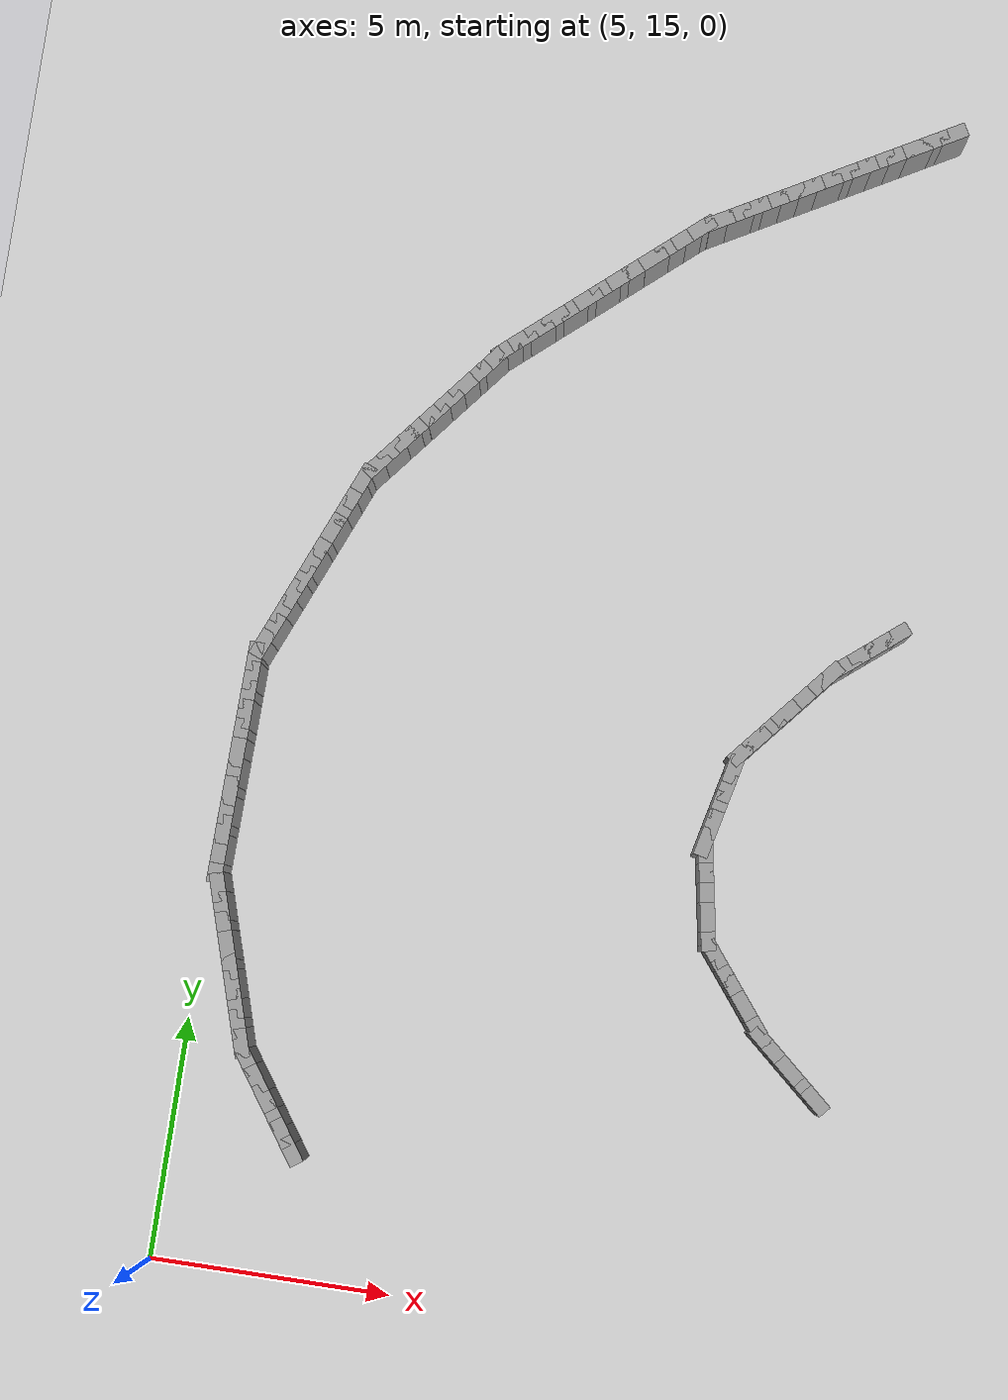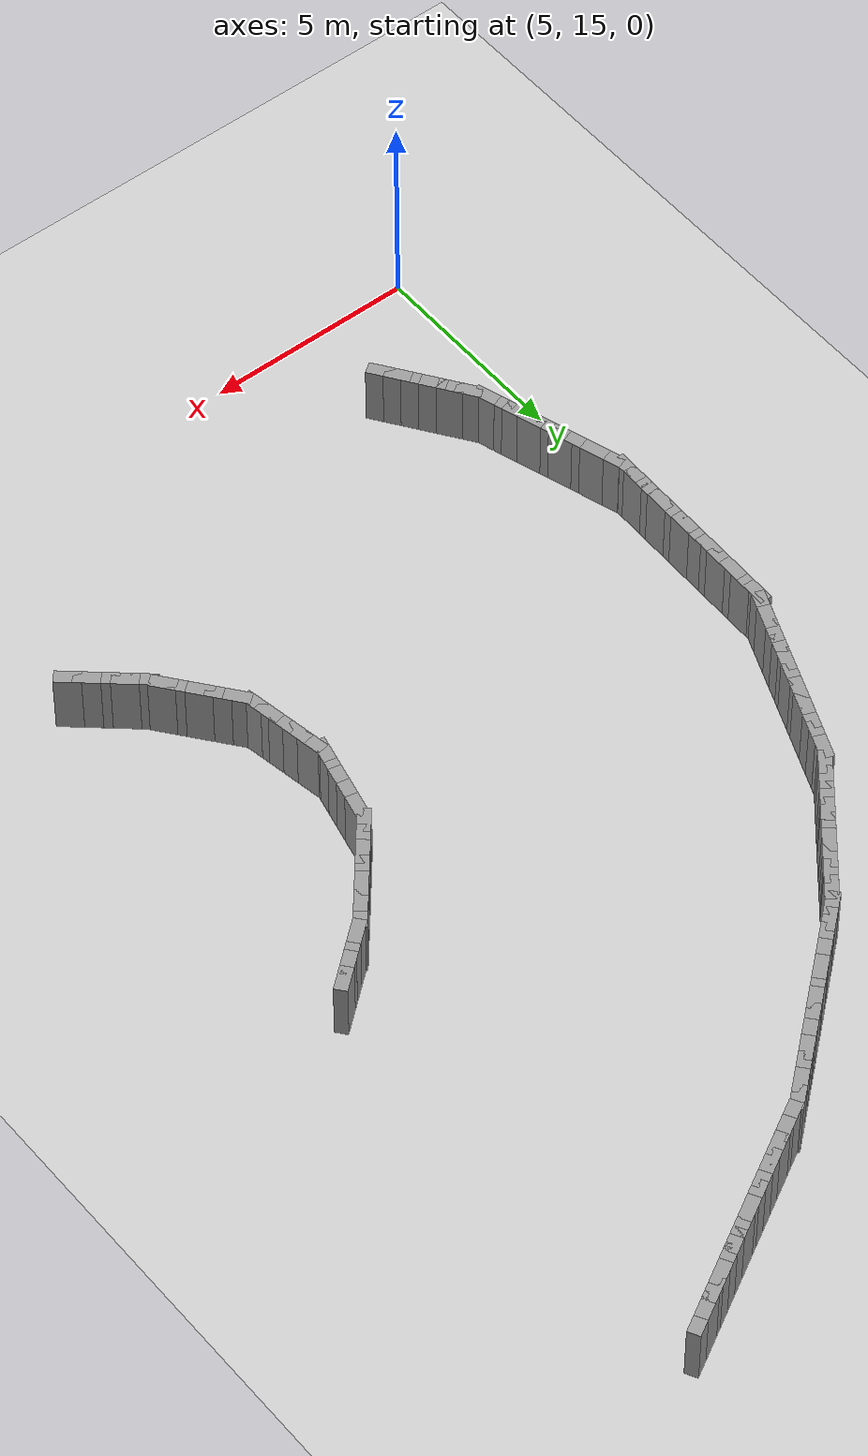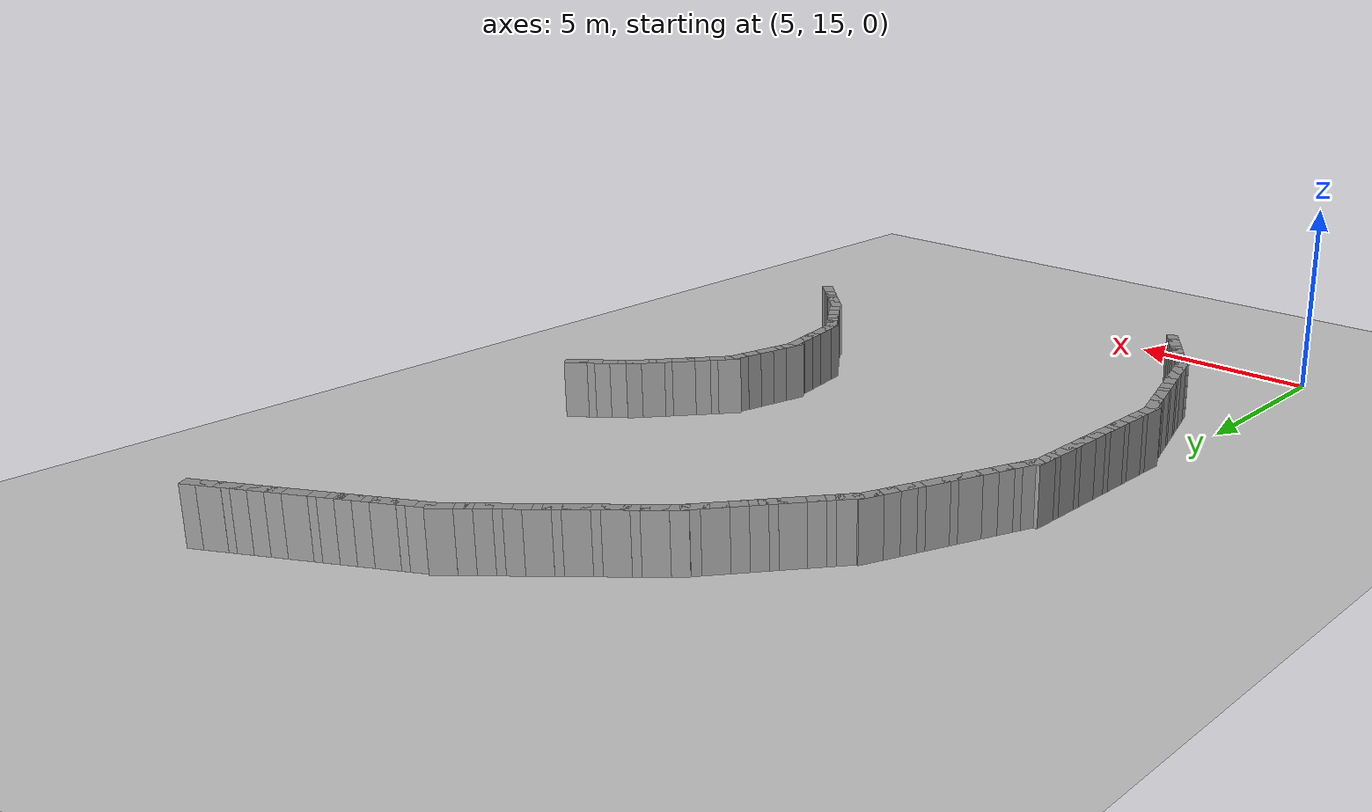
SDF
<sdf version="1.5">
 <world name="img_ellipse_obs">
  <include><uri>model://sun</uri></include>
  <include><uri>model://ground_plane</uri></include>
  <model name="wallL_0">
   <static>true</static>
   <pose>5.326 27.536 0.750 0 0 -1.592</pose>
   <link name="link">
    <collision name="col"><geometry><box><size>0.600 0.300 1.500</size></box></geometry></collision>
    <visual name="vis">
     <geometry><box><size>0.600 0.300 1.500</size></box></geometry>
     <material><ambient>0.6 0.6 0.6 1</ambient><diffuse>0.6 0.6 0.6 1</diffuse></material>
    </visual>
   </link>
  </model>
  <model name="wallL_1">
   <static>true</static>
   <pose>5.318 27.137 0.750 0 0 -1.592</pose>
   <link name="link">
    <collision name="col"><geometry><box><size>0.600 0.300 1.500</size></box></geometry></collision>
    <visual name="vis">
     <geometry><box><size>0.600 0.300 1.500</size></box></geometry>
     <material><ambient>0.6 0.6 0.6 1</ambient><diffuse>0.6 0.6 0.6 1</diffuse></material>
    </visual>
   </link>
  </model>
  <model name="wallL_2">
   <static>true</static>
   <pose>5.309 26.737 0.750 0 0 -1.592</pose>
   <link name="link">
    <collision name="col"><geometry><box><size>0.600 0.300 1.500</size></box></geometry></collision>
    <visual name="vis">
     <geometry><box><size>0.600 0.300 1.500</size></box></geometry>
     <material><ambient>0.6 0.6 0.6 1</ambient><diffuse>0.6 0.6 0.6 1</diffuse></material>
    </visual>
   </link>
  </model>
  <model name="wallL_3">
   <static>true</static>
   <pose>5.301 26.337 0.750 0 0 -1.592</pose>
   <link name="link">
    <collision name="col"><geometry><box><size>0.600 0.300 1.500</size></box></geometry></collision>
    <visual name="vis">
     <geometry><box><size>0.600 0.300 1.500</size></box></geometry>
     <material><ambient>0.6 0.6 0.6 1</ambient><diffuse>0.6 0.6 0.6 1</diffuse></material>
    </visual>
   </link>
  </model>
  <model name="wallL_4">
   <static>true</static>
   <pose>5.292 25.937 0.750 0 0 -1.592</pose>
   <link name="link">
    <collision name="col"><geometry><box><size>0.600 0.300 1.500</size></box></geometry></collision>
    <visual name="vis">
     <geometry><box><size>0.600 0.300 1.500</size></box></geometry>
     <material><ambient>0.6 0.6 0.6 1</ambient><diffuse>0.6 0.6 0.6 1</diffuse></material>
    </visual>
   </link>
  </model>
  <model name="wallL_5">
   <static>true</static>
   <pose>5.284 25.537 0.750 0 0 -1.592</pose>
   <link name="link">
    <collision name="col"><geometry><box><size>0.600 0.300 1.500</size></box></geometry></collision>
    <visual name="vis">
     <geometry><box><size>0.600 0.300 1.500</size></box></geometry>
     <material><ambient>0.6 0.6 0.6 1</ambient><diffuse>0.6 0.6 0.6 1</diffuse></material>
    </visual>
   </link>
  </model>
  <model name="wallL_6">
   <static>true</static>
   <pose>5.276 25.137 0.750 0 0 -1.592</pose>
   <link name="link">
    <collision name="col"><geometry><box><size>0.600 0.300 1.500</size></box></geometry></collision>
    <visual name="vis">
     <geometry><box><size>0.600 0.300 1.500</size></box></geometry>
     <material><ambient>0.6 0.6 0.6 1</ambient><diffuse>0.6 0.6 0.6 1</diffuse></material>
    </visual>
   </link>
  </model>
  <model name="wallL_7">
   <static>true</static>
   <pose>5.267 24.737 0.750 0 0 -1.592</pose>
   <link name="link">
    <collision name="col"><geometry><box><size>0.600 0.300 1.500</size></box></geometry></collision>
    <visual name="vis">
     <geometry><box><size>0.600 0.300 1.500</size></box></geometry>
     <material><ambient>0.6 0.6 0.6 1</ambient><diffuse>0.6 0.6 0.6 1</diffuse></material>
    </visual>
   </link>
  </model>
  <model name="wallL_8">
   <static>true</static>
   <pose>5.259 24.337 0.750 0 0 -1.592</pose>
   <link name="link">
    <collision name="col"><geometry><box><size>0.600 0.300 1.500</size></box></geometry></collision>
    <visual name="vis">
     <geometry><box><size>0.600 0.300 1.500</size></box></geometry>
     <material><ambient>0.6 0.6 0.6 1</ambient><diffuse>0.6 0.6 0.6 1</diffuse></material>
    </visual>
   </link>
  </model>
  <model name="wallL_9">
   <static>true</static>
   <pose>5.250 23.937 0.750 0 0 -1.592</pose>
   <link name="link">
    <collision name="col"><geometry><box><size>0.600 0.300 1.500</size></box></geometry></collision>
    <visual name="vis">
     <geometry><box><size>0.600 0.300 1.500</size></box></geometry>
     <material><ambient>0.6 0.6 0.6 1</ambient><diffuse>0.6 0.6 0.6 1</diffuse></material>
    </visual>
   </link>
  </model>
  <model name="wallL_10">
   <static>true</static>
   <pose>5.242 23.537 0.750 0 0 -1.592</pose>
   <link name="link">
    <collision name="col"><geometry><box><size>0.600 0.300 1.500</size></box></geometry></collision>
    <visual name="vis">
     <geometry><box><size>0.600 0.300 1.500</size></box></geometry>
     <material><ambient>0.6 0.6 0.6 1</ambient><diffuse>0.6 0.6 0.6 1</diffuse></material>
    </visual>
   </link>
  </model>
  <model name="wallL_11">
   <static>true</static>
   <pose>5.233 23.137 0.750 0 0 -1.592</pose>
   <link name="link">
    <collision name="col"><geometry><box><size>0.600 0.300 1.500</size></box></geometry></collision>
    <visual name="vis">
     <geometry><box><size>0.600 0.300 1.500</size></box></geometry>
     <material><ambient>0.6 0.6 0.6 1</ambient><diffuse>0.6 0.6 0.6 1</diffuse></material>
    </visual>
   </link>
  </model>
  <model name="wallL_12">
   <static>true</static>
   <pose>5.338 22.754 0.750 0 0 -1.268</pose>
   <link name="link">
    <collision name="col"><geometry><box><size>0.600 0.300 1.500</size></box></geometry></collision>
    <visual name="vis">
     <geometry><box><size>0.600 0.300 1.500</size></box></geometry>
     <material><ambient>0.6 0.6 0.6 1</ambient><diffuse>0.6 0.6 0.6 1</diffuse></material>
    </visual>
   </link>
  </model>
  <model name="wallL_13">
   <static>true</static>
   <pose>5.458 22.372 0.750 0 0 -1.268</pose>
   <link name="link">
    <collision name="col"><geometry><box><size>0.600 0.300 1.500</size></box></geometry></collision>
    <visual name="vis">
     <geometry><box><size>0.600 0.300 1.500</size></box></geometry>
     <material><ambient>0.6 0.6 0.6 1</ambient><diffuse>0.6 0.6 0.6 1</diffuse></material>
    </visual>
   </link>
  </model>
  <model name="wallL_14">
   <static>true</static>
   <pose>5.577 21.990 0.750 0 0 -1.268</pose>
   <link name="link">
    <collision name="col"><geometry><box><size>0.600 0.300 1.500</size></box></geometry></collision>
    <visual name="vis">
     <geometry><box><size>0.600 0.300 1.500</size></box></geometry>
     <material><ambient>0.6 0.6 0.6 1</ambient><diffuse>0.6 0.6 0.6 1</diffuse></material>
    </visual>
   </link>
  </model>
  <model name="wallL_15">
   <static>true</static>
   <pose>5.697 21.608 0.750 0 0 -1.268</pose>
   <link name="link">
    <collision name="col"><geometry><box><size>0.600 0.300 1.500</size></box></geometry></collision>
    <visual name="vis">
     <geometry><box><size>0.600 0.300 1.500</size></box></geometry>
     <material><ambient>0.6 0.6 0.6 1</ambient><diffuse>0.6 0.6 0.6 1</diffuse></material>
    </visual>
   </link>
  </model>
  <model name="wallL_16">
   <static>true</static>
   <pose>5.816 21.227 0.750 0 0 -1.268</pose>
   <link name="link">
    <collision name="col"><geometry><box><size>0.600 0.300 1.500</size></box></geometry></collision>
    <visual name="vis">
     <geometry><box><size>0.600 0.300 1.500</size></box></geometry>
     <material><ambient>0.6 0.6 0.6 1</ambient><diffuse>0.6 0.6 0.6 1</diffuse></material>
    </visual>
   </link>
  </model>
  <model name="wallL_17">
   <static>true</static>
   <pose>5.936 20.845 0.750 0 0 -1.268</pose>
   <link name="link">
    <collision name="col"><geometry><box><size>0.600 0.300 1.500</size></box></geometry></collision>
    <visual name="vis">
     <geometry><box><size>0.600 0.300 1.500</size></box></geometry>
     <material><ambient>0.6 0.6 0.6 1</ambient><diffuse>0.6 0.6 0.6 1</diffuse></material>
    </visual>
   </link>
  </model>
  <model name="wallL_18">
   <static>true</static>
   <pose>6.055 20.463 0.750 0 0 -1.268</pose>
   <link name="link">
    <collision name="col"><geometry><box><size>0.600 0.300 1.500</size></box></geometry></collision>
    <visual name="vis">
     <geometry><box><size>0.600 0.300 1.500</size></box></geometry>
     <material><ambient>0.6 0.6 0.6 1</ambient><diffuse>0.6 0.6 0.6 1</diffuse></material>
    </visual>
   </link>
  </model>
  <model name="wallL_19">
   <static>true</static>
   <pose>6.174 20.081 0.750 0 0 -1.268</pose>
   <link name="link">
    <collision name="col"><geometry><box><size>0.600 0.300 1.500</size></box></geometry></collision>
    <visual name="vis">
     <geometry><box><size>0.600 0.300 1.500</size></box></geometry>
     <material><ambient>0.6 0.6 0.6 1</ambient><diffuse>0.6 0.6 0.6 1</diffuse></material>
    </visual>
   </link>
  </model>
  <model name="wallL_20">
   <static>true</static>
   <pose>6.294 19.700 0.750 0 0 -1.268</pose>
   <link name="link">
    <collision name="col"><geometry><box><size>0.600 0.300 1.500</size></box></geometry></collision>
    <visual name="vis">
     <geometry><box><size>0.600 0.300 1.500</size></box></geometry>
     <material><ambient>0.6 0.6 0.6 1</ambient><diffuse>0.6 0.6 0.6 1</diffuse></material>
    </visual>
   </link>
  </model>
  <model name="wallL_21">
   <static>true</static>
   <pose>6.488 19.354 0.750 0 0 -0.961</pose>
   <link name="link">
    <collision name="col"><geometry><box><size>0.600 0.300 1.500</size></box></geometry></collision>
    <visual name="vis">
     <geometry><box><size>0.600 0.300 1.500</size></box></geometry>
     <material><ambient>0.6 0.6 0.6 1</ambient><diffuse>0.6 0.6 0.6 1</diffuse></material>
    </visual>
   </link>
  </model>
  <model name="wallL_22">
   <static>true</static>
   <pose>6.717 19.027 0.750 0 0 -0.961</pose>
   <link name="link">
    <collision name="col"><geometry><box><size>0.600 0.300 1.500</size></box></geometry></collision>
    <visual name="vis">
     <geometry><box><size>0.600 0.300 1.500</size></box></geometry>
     <material><ambient>0.6 0.6 0.6 1</ambient><diffuse>0.6 0.6 0.6 1</diffuse></material>
    </visual>
   </link>
  </model>
  <model name="wallL_23">
   <static>true</static>
   <pose>6.946 18.699 0.750 0 0 -0.961</pose>
   <link name="link">
    <collision name="col"><geometry><box><size>0.600 0.300 1.500</size></box></geometry></collision>
    <visual name="vis">
     <geometry><box><size>0.600 0.300 1.500</size></box></geometry>
     <material><ambient>0.6 0.6 0.6 1</ambient><diffuse>0.6 0.6 0.6 1</diffuse></material>
    </visual>
   </link>
  </model>
  <model name="wallL_24">
   <static>true</static>
   <pose>7.175 18.371 0.750 0 0 -0.961</pose>
   <link name="link">
    <collision name="col"><geometry><box><size>0.600 0.300 1.500</size></box></geometry></collision>
    <visual name="vis">
     <geometry><box><size>0.600 0.300 1.500</size></box></geometry>
     <material><ambient>0.6 0.6 0.6 1</ambient><diffuse>0.6 0.6 0.6 1</diffuse></material>
    </visual>
   </link>
  </model>
  <model name="wallL_25">
   <static>true</static>
   <pose>7.404 18.043 0.750 0 0 -0.961</pose>
   <link name="link">
    <collision name="col"><geometry><box><size>0.600 0.300 1.500</size></box></geometry></collision>
    <visual name="vis">
     <geometry><box><size>0.600 0.300 1.500</size></box></geometry>
     <material><ambient>0.6 0.6 0.6 1</ambient><diffuse>0.6 0.6 0.6 1</diffuse></material>
    </visual>
   </link>
  </model>
  <model name="wallL_26">
   <static>true</static>
   <pose>7.633 17.715 0.750 0 0 -0.961</pose>
   <link name="link">
    <collision name="col"><geometry><box><size>0.600 0.300 1.500</size></box></geometry></collision>
    <visual name="vis">
     <geometry><box><size>0.600 0.300 1.500</size></box></geometry>
     <material><ambient>0.6 0.6 0.6 1</ambient><diffuse>0.6 0.6 0.6 1</diffuse></material>
    </visual>
   </link>
  </model>
  <model name="wallL_392">
   <static>true</static>
   <pose>17.973 40.515 0.750 0 0 -2.632</pose>
   <link name="link">
    <collision name="col"><geometry><box><size>0.600 0.300 1.500</size></box></geometry></collision>
    <visual name="vis">
     <geometry><box><size>0.600 0.300 1.500</size></box></geometry>
     <material><ambient>0.6 0.6 0.6 1</ambient><diffuse>0.6 0.6 0.6 1</diffuse></material>
    </visual>
   </link>
  </model>
  <model name="wallL_393">
   <static>true</static>
   <pose>17.624 40.320 0.750 0 0 -2.632</pose>
   <link name="link">
    <collision name="col"><geometry><box><size>0.600 0.300 1.500</size></box></geometry></collision>
    <visual name="vis">
     <geometry><box><size>0.600 0.300 1.500</size></box></geometry>
     <material><ambient>0.6 0.6 0.6 1</ambient><diffuse>0.6 0.6 0.6 1</diffuse></material>
    </visual>
   </link>
  </model>
  <model name="wallL_394">
   <static>true</static>
   <pose>17.275 40.124 0.750 0 0 -2.632</pose>
   <link name="link">
    <collision name="col"><geometry><box><size>0.600 0.300 1.500</size></box></geometry></collision>
    <visual name="vis">
     <geometry><box><size>0.600 0.300 1.500</size></box></geometry>
     <material><ambient>0.6 0.6 0.6 1</ambient><diffuse>0.6 0.6 0.6 1</diffuse></material>
    </visual>
   </link>
  </model>
  <model name="wallL_395">
   <static>true</static>
   <pose>16.926 39.929 0.750 0 0 -2.632</pose>
   <link name="link">
    <collision name="col"><geometry><box><size>0.600 0.300 1.500</size></box></geometry></collision>
    <visual name="vis">
     <geometry><box><size>0.600 0.300 1.500</size></box></geometry>
     <material><ambient>0.6 0.6 0.6 1</ambient><diffuse>0.6 0.6 0.6 1</diffuse></material>
    </visual>
   </link>
  </model>
  <model name="wallL_396">
   <static>true</static>
   <pose>16.577 39.734 0.750 0 0 -2.632</pose>
   <link name="link">
    <collision name="col"><geometry><box><size>0.600 0.300 1.500</size></box></geometry></collision>
    <visual name="vis">
     <geometry><box><size>0.600 0.300 1.500</size></box></geometry>
     <material><ambient>0.6 0.6 0.6 1</ambient><diffuse>0.6 0.6 0.6 1</diffuse></material>
    </visual>
   </link>
  </model>
  <model name="wallL_397">
   <static>true</static>
   <pose>16.228 39.539 0.750 0 0 -2.632</pose>
   <link name="link">
    <collision name="col"><geometry><box><size>0.600 0.300 1.500</size></box></geometry></collision>
    <visual name="vis">
     <geometry><box><size>0.600 0.300 1.500</size></box></geometry>
     <material><ambient>0.6 0.6 0.6 1</ambient><diffuse>0.6 0.6 0.6 1</diffuse></material>
    </visual>
   </link>
  </model>
  <model name="wallL_398">
   <static>true</static>
   <pose>15.879 39.344 0.750 0 0 -2.632</pose>
   <link name="link">
    <collision name="col"><geometry><box><size>0.600 0.300 1.500</size></box></geometry></collision>
    <visual name="vis">
     <geometry><box><size>0.600 0.300 1.500</size></box></geometry>
     <material><ambient>0.6 0.6 0.6 1</ambient><diffuse>0.6 0.6 0.6 1</diffuse></material>
    </visual>
   </link>
  </model>
  <model name="wallL_399">
   <static>true</static>
   <pose>15.529 39.148 0.750 0 0 -2.632</pose>
   <link name="link">
    <collision name="col"><geometry><box><size>0.600 0.300 1.500</size></box></geometry></collision>
    <visual name="vis">
     <geometry><box><size>0.600 0.300 1.500</size></box></geometry>
     <material><ambient>0.6 0.6 0.6 1</ambient><diffuse>0.6 0.6 0.6 1</diffuse></material>
    </visual>
   </link>
  </model>
  <model name="wallL_400">
   <static>true</static>
   <pose>15.180 38.953 0.750 0 0 -2.632</pose>
   <link name="link">
    <collision name="col"><geometry><box><size>0.600 0.300 1.500</size></box></geometry></collision>
    <visual name="vis">
     <geometry><box><size>0.600 0.300 1.500</size></box></geometry>
     <material><ambient>0.6 0.6 0.6 1</ambient><diffuse>0.6 0.6 0.6 1</diffuse></material>
    </visual>
   </link>
  </model>
  <model name="wallL_401">
   <static>true</static>
   <pose>14.831 38.758 0.750 0 0 -2.632</pose>
   <link name="link">
    <collision name="col"><geometry><box><size>0.600 0.300 1.500</size></box></geometry></collision>
    <visual name="vis">
     <geometry><box><size>0.600 0.300 1.500</size></box></geometry>
     <material><ambient>0.6 0.6 0.6 1</ambient><diffuse>0.6 0.6 0.6 1</diffuse></material>
    </visual>
   </link>
  </model>
  <model name="wallL_402">
   <static>true</static>
   <pose>14.482 38.563 0.750 0 0 -2.632</pose>
   <link name="link">
    <collision name="col"><geometry><box><size>0.600 0.300 1.500</size></box></geometry></collision>
    <visual name="vis">
     <geometry><box><size>0.600 0.300 1.500</size></box></geometry>
     <material><ambient>0.6 0.6 0.6 1</ambient><diffuse>0.6 0.6 0.6 1</diffuse></material>
    </visual>
   </link>
  </model>
  <model name="wallL_403">
   <static>true</static>
   <pose>14.133 38.368 0.750 0 0 -2.632</pose>
   <link name="link">
    <collision name="col"><geometry><box><size>0.600 0.300 1.500</size></box></geometry></collision>
    <visual name="vis">
     <geometry><box><size>0.600 0.300 1.500</size></box></geometry>
     <material><ambient>0.6 0.6 0.6 1</ambient><diffuse>0.6 0.6 0.6 1</diffuse></material>
    </visual>
   </link>
  </model>
  <model name="wallL_404">
   <static>true</static>
   <pose>13.784 38.172 0.750 0 0 -2.632</pose>
   <link name="link">
    <collision name="col"><geometry><box><size>0.600 0.300 1.500</size></box></geometry></collision>
    <visual name="vis">
     <geometry><box><size>0.600 0.300 1.500</size></box></geometry>
     <material><ambient>0.6 0.6 0.6 1</ambient><diffuse>0.6 0.6 0.6 1</diffuse></material>
    </visual>
   </link>
  </model>
  <model name="wallL_405">
   <static>true</static>
   <pose>13.435 37.977 0.750 0 0 -2.632</pose>
   <link name="link">
    <collision name="col"><geometry><box><size>0.600 0.300 1.500</size></box></geometry></collision>
    <visual name="vis">
     <geometry><box><size>0.600 0.300 1.500</size></box></geometry>
     <material><ambient>0.6 0.6 0.6 1</ambient><diffuse>0.6 0.6 0.6 1</diffuse></material>
    </visual>
   </link>
  </model>
  <model name="wallL_406">
   <static>true</static>
   <pose>13.092 37.773 0.750 0 0 -2.429</pose>
   <link name="link">
    <collision name="col"><geometry><box><size>0.600 0.300 1.500</size></box></geometry></collision>
    <visual name="vis">
     <geometry><box><size>0.600 0.300 1.500</size></box></geometry>
     <material><ambient>0.6 0.6 0.6 1</ambient><diffuse>0.6 0.6 0.6 1</diffuse></material>
    </visual>
   </link>
  </model>
  <model name="wallL_407">
   <static>true</static>
   <pose>12.789 37.511 0.750 0 0 -2.429</pose>
   <link name="link">
    <collision name="col"><geometry><box><size>0.600 0.300 1.500</size></box></geometry></collision>
    <visual name="vis">
     <geometry><box><size>0.600 0.300 1.500</size></box></geometry>
     <material><ambient>0.6 0.6 0.6 1</ambient><diffuse>0.6 0.6 0.6 1</diffuse></material>
    </visual>
   </link>
  </model>
  <model name="wallL_408">
   <static>true</static>
   <pose>12.487 37.250 0.750 0 0 -2.429</pose>
   <link name="link">
    <collision name="col"><geometry><box><size>0.600 0.300 1.500</size></box></geometry></collision>
    <visual name="vis">
     <geometry><box><size>0.600 0.300 1.500</size></box></geometry>
     <material><ambient>0.6 0.6 0.6 1</ambient><diffuse>0.6 0.6 0.6 1</diffuse></material>
    </visual>
   </link>
  </model>
  <model name="wallL_409">
   <static>true</static>
   <pose>12.184 36.988 0.750 0 0 -2.429</pose>
   <link name="link">
    <collision name="col"><geometry><box><size>0.600 0.300 1.500</size></box></geometry></collision>
    <visual name="vis">
     <geometry><box><size>0.600 0.300 1.500</size></box></geometry>
     <material><ambient>0.6 0.6 0.6 1</ambient><diffuse>0.6 0.6 0.6 1</diffuse></material>
    </visual>
   </link>
  </model>
  <model name="wallL_410">
   <static>true</static>
   <pose>11.881 36.727 0.750 0 0 -2.429</pose>
   <link name="link">
    <collision name="col"><geometry><box><size>0.600 0.300 1.500</size></box></geometry></collision>
    <visual name="vis">
     <geometry><box><size>0.600 0.300 1.500</size></box></geometry>
     <material><ambient>0.6 0.6 0.6 1</ambient><diffuse>0.6 0.6 0.6 1</diffuse></material>
    </visual>
   </link>
  </model>
  <model name="wallL_411">
   <static>true</static>
   <pose>11.578 36.466 0.750 0 0 -2.429</pose>
   <link name="link">
    <collision name="col"><geometry><box><size>0.600 0.300 1.500</size></box></geometry></collision>
    <visual name="vis">
     <geometry><box><size>0.600 0.300 1.500</size></box></geometry>
     <material><ambient>0.6 0.6 0.6 1</ambient><diffuse>0.6 0.6 0.6 1</diffuse></material>
    </visual>
   </link>
  </model>
  <model name="wallL_412">
   <static>true</static>
   <pose>11.276 36.204 0.750 0 0 -2.429</pose>
   <link name="link">
    <collision name="col"><geometry><box><size>0.600 0.300 1.500</size></box></geometry></collision>
    <visual name="vis">
     <geometry><box><size>0.600 0.300 1.500</size></box></geometry>
     <material><ambient>0.6 0.6 0.6 1</ambient><diffuse>0.6 0.6 0.6 1</diffuse></material>
    </visual>
   </link>
  </model>
  <model name="wallL_413">
   <static>true</static>
   <pose>10.973 35.943 0.750 0 0 -2.429</pose>
   <link name="link">
    <collision name="col"><geometry><box><size>0.600 0.300 1.500</size></box></geometry></collision>
    <visual name="vis">
     <geometry><box><size>0.600 0.300 1.500</size></box></geometry>
     <material><ambient>0.6 0.6 0.6 1</ambient><diffuse>0.6 0.6 0.6 1</diffuse></material>
    </visual>
   </link>
  </model>
  <model name="wallL_414">
   <static>true</static>
   <pose>10.670 35.681 0.750 0 0 -2.429</pose>
   <link name="link">
    <collision name="col"><geometry><box><size>0.600 0.300 1.500</size></box></geometry></collision>
    <visual name="vis">
     <geometry><box><size>0.600 0.300 1.500</size></box></geometry>
     <material><ambient>0.6 0.6 0.6 1</ambient><diffuse>0.6 0.6 0.6 1</diffuse></material>
    </visual>
   </link>
  </model>
  <model name="wallL_415">
   <static>true</static>
   <pose>10.367 35.420 0.750 0 0 -2.429</pose>
   <link name="link">
    <collision name="col"><geometry><box><size>0.600 0.300 1.500</size></box></geometry></collision>
    <visual name="vis">
     <geometry><box><size>0.600 0.300 1.500</size></box></geometry>
     <material><ambient>0.6 0.6 0.6 1</ambient><diffuse>0.6 0.6 0.6 1</diffuse></material>
    </visual>
   </link>
  </model>
  <model name="wallL_416">
   <static>true</static>
   <pose>10.065 35.158 0.750 0 0 -2.429</pose>
   <link name="link">
    <collision name="col"><geometry><box><size>0.600 0.300 1.500</size></box></geometry></collision>
    <visual name="vis">
     <geometry><box><size>0.600 0.300 1.500</size></box></geometry>
     <material><ambient>0.6 0.6 0.6 1</ambient><diffuse>0.6 0.6 0.6 1</diffuse></material>
    </visual>
   </link>
  </model>
  <model name="wallL_417">
   <static>true</static>
   <pose>9.762 34.897 0.750 0 0 -2.429</pose>
   <link name="link">
    <collision name="col"><geometry><box><size>0.600 0.300 1.500</size></box></geometry></collision>
    <visual name="vis">
     <geometry><box><size>0.600 0.300 1.500</size></box></geometry>
     <material><ambient>0.6 0.6 0.6 1</ambient><diffuse>0.6 0.6 0.6 1</diffuse></material>
    </visual>
   </link>
  </model>
  <model name="wallL_418">
   <static>true</static>
   <pose>9.459 34.635 0.750 0 0 -2.429</pose>
   <link name="link">
    <collision name="col"><geometry><box><size>0.600 0.300 1.500</size></box></geometry></collision>
    <visual name="vis">
     <geometry><box><size>0.600 0.300 1.500</size></box></geometry>
     <material><ambient>0.6 0.6 0.6 1</ambient><diffuse>0.6 0.6 0.6 1</diffuse></material>
    </visual>
   </link>
  </model>
  <model name="wallL_419">
   <static>true</static>
   <pose>9.201 34.331 0.750 0 0 -2.250</pose>
   <link name="link">
    <collision name="col"><geometry><box><size>0.600 0.300 1.500</size></box></geometry></collision>
    <visual name="vis">
     <geometry><box><size>0.600 0.300 1.500</size></box></geometry>
     <material><ambient>0.6 0.6 0.6 1</ambient><diffuse>0.6 0.6 0.6 1</diffuse></material>
    </visual>
   </link>
  </model>
  <model name="wallL_420">
   <static>true</static>
   <pose>8.949 34.020 0.750 0 0 -2.250</pose>
   <link name="link">
    <collision name="col"><geometry><box><size>0.600 0.300 1.500</size></box></geometry></collision>
    <visual name="vis">
     <geometry><box><size>0.600 0.300 1.500</size></box></geometry>
     <material><ambient>0.6 0.6 0.6 1</ambient><diffuse>0.6 0.6 0.6 1</diffuse></material>
    </visual>
   </link>
  </model>
  <model name="wallL_421">
   <static>true</static>
   <pose>8.698 33.709 0.750 0 0 -2.250</pose>
   <link name="link">
    <collision name="col"><geometry><box><size>0.600 0.300 1.500</size></box></geometry></collision>
    <visual name="vis">
     <geometry><box><size>0.600 0.300 1.500</size></box></geometry>
     <material><ambient>0.6 0.6 0.6 1</ambient><diffuse>0.6 0.6 0.6 1</diffuse></material>
    </visual>
   </link>
  </model>
  <model name="wallL_422">
   <static>true</static>
   <pose>8.447 33.398 0.750 0 0 -2.250</pose>
   <link name="link">
    <collision name="col"><geometry><box><size>0.600 0.300 1.500</size></box></geometry></collision>
    <visual name="vis">
     <geometry><box><size>0.600 0.300 1.500</size></box></geometry>
     <material><ambient>0.6 0.6 0.6 1</ambient><diffuse>0.6 0.6 0.6 1</diffuse></material>
    </visual>
   </link>
  </model>
  <model name="wallL_423">
   <static>true</static>
   <pose>8.196 33.086 0.750 0 0 -2.250</pose>
   <link name="link">
    <collision name="col"><geometry><box><size>0.600 0.300 1.500</size></box></geometry></collision>
    <visual name="vis">
     <geometry><box><size>0.600 0.300 1.500</size></box></geometry>
     <material><ambient>0.6 0.6 0.6 1</ambient><diffuse>0.6 0.6 0.6 1</diffuse></material>
    </visual>
   </link>
  </model>
  <model name="wallL_424">
   <static>true</static>
   <pose>7.944 32.775 0.750 0 0 -2.250</pose>
   <link name="link">
    <collision name="col"><geometry><box><size>0.600 0.300 1.500</size></box></geometry></collision>
    <visual name="vis">
     <geometry><box><size>0.600 0.300 1.500</size></box></geometry>
     <material><ambient>0.6 0.6 0.6 1</ambient><diffuse>0.6 0.6 0.6 1</diffuse></material>
    </visual>
   </link>
  </model>
  <model name="wallL_425">
   <static>true</static>
   <pose>7.693 32.464 0.750 0 0 -2.250</pose>
   <link name="link">
    <collision name="col"><geometry><box><size>0.600 0.300 1.500</size></box></geometry></collision>
    <visual name="vis">
     <geometry><box><size>0.600 0.300 1.500</size></box></geometry>
     <material><ambient>0.6 0.6 0.6 1</ambient><diffuse>0.6 0.6 0.6 1</diffuse></material>
    </visual>
   </link>
  </model>
  <model name="wallL_426">
   <static>true</static>
   <pose>7.442 32.153 0.750 0 0 -2.250</pose>
   <link name="link">
    <collision name="col"><geometry><box><size>0.600 0.300 1.500</size></box></geometry></collision>
    <visual name="vis">
     <geometry><box><size>0.600 0.300 1.500</size></box></geometry>
     <material><ambient>0.6 0.6 0.6 1</ambient><diffuse>0.6 0.6 0.6 1</diffuse></material>
    </visual>
   </link>
  </model>
  <model name="wallL_427">
   <static>true</static>
   <pose>7.190 31.842 0.750 0 0 -2.250</pose>
   <link name="link">
    <collision name="col"><geometry><box><size>0.600 0.300 1.500</size></box></geometry></collision>
    <visual name="vis">
     <geometry><box><size>0.600 0.300 1.500</size></box></geometry>
     <material><ambient>0.6 0.6 0.6 1</ambient><diffuse>0.6 0.6 0.6 1</diffuse></material>
    </visual>
   </link>
  </model>
  <model name="wallL_428">
   <static>true</static>
   <pose>6.963 31.516 0.750 0 0 -1.961</pose>
   <link name="link">
    <collision name="col"><geometry><box><size>0.600 0.300 1.500</size></box></geometry></collision>
    <visual name="vis">
     <geometry><box><size>0.600 0.300 1.500</size></box></geometry>
     <material><ambient>0.6 0.6 0.6 1</ambient><diffuse>0.6 0.6 0.6 1</diffuse></material>
    </visual>
   </link>
  </model>
  <model name="wallL_429">
   <static>true</static>
   <pose>6.811 31.146 0.750 0 0 -1.961</pose>
   <link name="link">
    <collision name="col"><geometry><box><size>0.600 0.300 1.500</size></box></geometry></collision>
    <visual name="vis">
     <geometry><box><size>0.600 0.300 1.500</size></box></geometry>
     <material><ambient>0.6 0.6 0.6 1</ambient><diffuse>0.6 0.6 0.6 1</diffuse></material>
    </visual>
   </link>
  </model>
  <model name="wallL_430">
   <static>true</static>
   <pose>6.659 30.776 0.750 0 0 -1.961</pose>
   <link name="link">
    <collision name="col"><geometry><box><size>0.600 0.300 1.500</size></box></geometry></collision>
    <visual name="vis">
     <geometry><box><size>0.600 0.300 1.500</size></box></geometry>
     <material><ambient>0.6 0.6 0.6 1</ambient><diffuse>0.6 0.6 0.6 1</diffuse></material>
    </visual>
   </link>
  </model>
  <model name="wallL_431">
   <static>true</static>
   <pose>6.507 30.406 0.750 0 0 -1.961</pose>
   <link name="link">
    <collision name="col"><geometry><box><size>0.600 0.300 1.500</size></box></geometry></collision>
    <visual name="vis">
     <geometry><box><size>0.600 0.300 1.500</size></box></geometry>
     <material><ambient>0.6 0.6 0.6 1</ambient><diffuse>0.6 0.6 0.6 1</diffuse></material>
    </visual>
   </link>
  </model>
  <model name="wallL_432">
   <static>true</static>
   <pose>6.354 30.036 0.750 0 0 -1.961</pose>
   <link name="link">
    <collision name="col"><geometry><box><size>0.600 0.300 1.500</size></box></geometry></collision>
    <visual name="vis">
     <geometry><box><size>0.600 0.300 1.500</size></box></geometry>
     <material><ambient>0.6 0.6 0.6 1</ambient><diffuse>0.6 0.6 0.6 1</diffuse></material>
    </visual>
   </link>
  </model>
  <model name="wallL_433">
   <static>true</static>
   <pose>6.202 29.666 0.750 0 0 -1.961</pose>
   <link name="link">
    <collision name="col"><geometry><box><size>0.600 0.300 1.500</size></box></geometry></collision>
    <visual name="vis">
     <geometry><box><size>0.600 0.300 1.500</size></box></geometry>
     <material><ambient>0.6 0.6 0.6 1</ambient><diffuse>0.6 0.6 0.6 1</diffuse></material>
    </visual>
   </link>
  </model>
  <model name="wallL_434">
   <static>true</static>
   <pose>6.050 29.297 0.750 0 0 -1.961</pose>
   <link name="link">
    <collision name="col"><geometry><box><size>0.600 0.300 1.500</size></box></geometry></collision>
    <visual name="vis">
     <geometry><box><size>0.600 0.300 1.500</size></box></geometry>
     <material><ambient>0.6 0.6 0.6 1</ambient><diffuse>0.6 0.6 0.6 1</diffuse></material>
    </visual>
   </link>
  </model>
  <model name="wallL_435">
   <static>true</static>
   <pose>5.898 28.927 0.750 0 0 -1.961</pose>
   <link name="link">
    <collision name="col"><geometry><box><size>0.600 0.300 1.500</size></box></geometry></collision>
    <visual name="vis">
     <geometry><box><size>0.600 0.300 1.500</size></box></geometry>
     <material><ambient>0.6 0.6 0.6 1</ambient><diffuse>0.6 0.6 0.6 1</diffuse></material>
    </visual>
   </link>
  </model>
  <model name="wallL_436">
   <static>true</static>
   <pose>5.746 28.557 0.750 0 0 -1.961</pose>
   <link name="link">
    <collision name="col"><geometry><box><size>0.600 0.300 1.500</size></box></geometry></collision>
    <visual name="vis">
     <geometry><box><size>0.600 0.300 1.500</size></box></geometry>
     <material><ambient>0.6 0.6 0.6 1</ambient><diffuse>0.6 0.6 0.6 1</diffuse></material>
    </visual>
   </link>
  </model>
  <model name="wallL_437">
   <static>true</static>
   <pose>5.594 28.187 0.750 0 0 -1.961</pose>
   <link name="link">
    <collision name="col"><geometry><box><size>0.600 0.300 1.500</size></box></geometry></collision>
    <visual name="vis">
     <geometry><box><size>0.600 0.300 1.500</size></box></geometry>
     <material><ambient>0.6 0.6 0.6 1</ambient><diffuse>0.6 0.6 0.6 1</diffuse></material>
    </visual>
   </link>
  </model>
  <model name="wallL_438">
   <static>true</static>
   <pose>5.441 27.817 0.750 0 0 -1.961</pose>
   <link name="link">
    <collision name="col"><geometry><box><size>0.600 0.300 1.500</size></box></geometry></collision>
    <visual name="vis">
     <geometry><box><size>0.600 0.300 1.500</size></box></geometry>
     <material><ambient>0.6 0.6 0.6 1</ambient><diffuse>0.6 0.6 0.6 1</diffuse></material>
    </visual>
   </link>
  </model>
  <model name="wallR_0">
   <static>true</static>
   <pose>15.018 25.147 0.750 0 0 1.349</pose>
   <link name="link">
    <collision name="col"><geometry><box><size>0.600 0.300 1.500</size></box></geometry></collision>
    <visual name="vis">
     <geometry><box><size>0.600 0.300 1.500</size></box></geometry>
     <material><ambient>0.6 0.6 0.6 1</ambient><diffuse>0.6 0.6 0.6 1</diffuse></material>
    </visual>
   </link>
  </model>
  <model name="wallR_1">
   <static>true</static>
   <pose>15.106 25.537 0.750 0 0 1.349</pose>
   <link name="link">
    <collision name="col"><geometry><box><size>0.600 0.300 1.500</size></box></geometry></collision>
    <visual name="vis">
     <geometry><box><size>0.600 0.300 1.500</size></box></geometry>
     <material><ambient>0.6 0.6 0.6 1</ambient><diffuse>0.6 0.6 0.6 1</diffuse></material>
    </visual>
   </link>
  </model>
  <model name="wallR_2">
   <static>true</static>
   <pose>15.194 25.927 0.750 0 0 1.349</pose>
   <link name="link">
    <collision name="col"><geometry><box><size>0.600 0.300 1.500</size></box></geometry></collision>
    <visual name="vis">
     <geometry><box><size>0.600 0.300 1.500</size></box></geometry>
     <material><ambient>0.6 0.6 0.6 1</ambient><diffuse>0.6 0.6 0.6 1</diffuse></material>
    </visual>
   </link>
  </model>
  <model name="wallR_3">
   <static>true</static>
   <pose>15.282 26.317 0.750 0 0 1.349</pose>
   <link name="link">
    <collision name="col"><geometry><box><size>0.600 0.300 1.500</size></box></geometry></collision>
    <visual name="vis">
     <geometry><box><size>0.600 0.300 1.500</size></box></geometry>
     <material><ambient>0.6 0.6 0.6 1</ambient><diffuse>0.6 0.6 0.6 1</diffuse></material>
    </visual>
   </link>
  </model>
  <model name="wallR_4">
   <static>true</static>
   <pose>15.371 26.707 0.750 0 0 1.349</pose>
   <link name="link">
    <collision name="col"><geometry><box><size>0.600 0.300 1.500</size></box></geometry></collision>
    <visual name="vis">
     <geometry><box><size>0.600 0.300 1.500</size></box></geometry>
     <material><ambient>0.6 0.6 0.6 1</ambient><diffuse>0.6 0.6 0.6 1</diffuse></material>
    </visual>
   </link>
  </model>
  <model name="wallR_5">
   <static>true</static>
   <pose>15.499 27.077 0.750 0 0 0.872</pose>
   <link name="link">
    <collision name="col"><geometry><box><size>0.600 0.300 1.500</size></box></geometry></collision>
    <visual name="vis">
     <geometry><box><size>0.600 0.300 1.500</size></box></geometry>
     <material><ambient>0.6 0.6 0.6 1</ambient><diffuse>0.6 0.6 0.6 1</diffuse></material>
    </visual>
   </link>
  </model>
  <model name="wallR_6">
   <static>true</static>
   <pose>15.757 27.383 0.750 0 0 0.872</pose>
   <link name="link">
    <collision name="col"><geometry><box><size>0.600 0.300 1.500</size></box></geometry></collision>
    <visual name="vis">
     <geometry><box><size>0.600 0.300 1.500</size></box></geometry>
     <material><ambient>0.6 0.6 0.6 1</ambient><diffuse>0.6 0.6 0.6 1</diffuse></material>
    </visual>
   </link>
  </model>
  <model name="wallR_7">
   <static>true</static>
   <pose>16.014 27.690 0.750 0 0 0.872</pose>
   <link name="link">
    <collision name="col"><geometry><box><size>0.600 0.300 1.500</size></box></geometry></collision>
    <visual name="vis">
     <geometry><box><size>0.600 0.300 1.500</size></box></geometry>
     <material><ambient>0.6 0.6 0.6 1</ambient><diffuse>0.6 0.6 0.6 1</diffuse></material>
    </visual>
   </link>
  </model>
  <model name="wallR_8">
   <static>true</static>
   <pose>16.271 27.996 0.750 0 0 0.872</pose>
   <link name="link">
    <collision name="col"><geometry><box><size>0.600 0.300 1.500</size></box></geometry></collision>
    <visual name="vis">
     <geometry><box><size>0.600 0.300 1.500</size></box></geometry>
     <material><ambient>0.6 0.6 0.6 1</ambient><diffuse>0.6 0.6 0.6 1</diffuse></material>
    </visual>
   </link>
  </model>
  <model name="wallR_9">
   <static>true</static>
   <pose>16.529 28.302 0.750 0 0 0.872</pose>
   <link name="link">
    <collision name="col"><geometry><box><size>0.600 0.300 1.500</size></box></geometry></collision>
    <visual name="vis">
     <geometry><box><size>0.600 0.300 1.500</size></box></geometry>
     <material><ambient>0.6 0.6 0.6 1</ambient><diffuse>0.6 0.6 0.6 1</diffuse></material>
    </visual>
   </link>
  </model>
  <model name="wallR_10">
   <static>true</static>
   <pose>16.786 28.608 0.750 0 0 0.872</pose>
   <link name="link">
    <collision name="col"><geometry><box><size>0.600 0.300 1.500</size></box></geometry></collision>
    <visual name="vis">
     <geometry><box><size>0.600 0.300 1.500</size></box></geometry>
     <material><ambient>0.6 0.6 0.6 1</ambient><diffuse>0.6 0.6 0.6 1</diffuse></material>
    </visual>
   </link>
  </model>
  <model name="wallR_11">
   <static>true</static>
   <pose>17.044 28.914 0.750 0 0 0.872</pose>
   <link name="link">
    <collision name="col"><geometry><box><size>0.600 0.300 1.500</size></box></geometry></collision>
    <visual name="vis">
     <geometry><box><size>0.600 0.300 1.500</size></box></geometry>
     <material><ambient>0.6 0.6 0.6 1</ambient><diffuse>0.6 0.6 0.6 1</diffuse></material>
    </visual>
   </link>
  </model>
  <model name="wallR_12">
   <static>true</static>
   <pose>17.341 29.179 0.750 0 0 0.683</pose>
   <link name="link">
    <collision name="col"><geometry><box><size>0.600 0.300 1.500</size></box></geometry></collision>
    <visual name="vis">
     <geometry><box><size>0.600 0.300 1.500</size></box></geometry>
     <material><ambient>0.6 0.6 0.6 1</ambient><diffuse>0.6 0.6 0.6 1</diffuse></material>
    </visual>
   </link>
  </model>
  <model name="wallR_13">
   <static>true</static>
   <pose>17.652 29.432 0.750 0 0 0.683</pose>
   <link name="link">
    <collision name="col"><geometry><box><size>0.600 0.300 1.500</size></box></geometry></collision>
    <visual name="vis">
     <geometry><box><size>0.600 0.300 1.500</size></box></geometry>
     <material><ambient>0.6 0.6 0.6 1</ambient><diffuse>0.6 0.6 0.6 1</diffuse></material>
    </visual>
   </link>
  </model>
  <model name="wallR_14">
   <static>true</static>
   <pose>17.962 29.684 0.750 0 0 0.683</pose>
   <link name="link">
    <collision name="col"><geometry><box><size>0.600 0.300 1.500</size></box></geometry></collision>
    <visual name="vis">
     <geometry><box><size>0.600 0.300 1.500</size></box></geometry>
     <material><ambient>0.6 0.6 0.6 1</ambient><diffuse>0.6 0.6 0.6 1</diffuse></material>
    </visual>
   </link>
  </model>
  <model name="wallR_15">
   <static>true</static>
   <pose>18.272 29.937 0.750 0 0 0.683</pose>
   <link name="link">
    <collision name="col"><geometry><box><size>0.600 0.300 1.500</size></box></geometry></collision>
    <visual name="vis">
     <geometry><box><size>0.600 0.300 1.500</size></box></geometry>
     <material><ambient>0.6 0.6 0.6 1</ambient><diffuse>0.6 0.6 0.6 1</diffuse></material>
    </visual>
   </link>
  </model>
  <model name="wallR_273">
   <static>true</static>
   <pose>17.980 20.296 0.750 0 0 2.425</pose>
   <link name="link">
    <collision name="col"><geometry><box><size>0.600 0.300 1.500</size></box></geometry></collision>
    <visual name="vis">
     <geometry><box><size>0.600 0.300 1.500</size></box></geometry>
     <material><ambient>0.6 0.6 0.6 1</ambient><diffuse>0.6 0.6 0.6 1</diffuse></material>
    </visual>
   </link>
  </model>
  <model name="wallR_274">
   <static>true</static>
   <pose>17.678 20.559 0.750 0 0 2.425</pose>
   <link name="link">
    <collision name="col"><geometry><box><size>0.600 0.300 1.500</size></box></geometry></collision>
    <visual name="vis">
     <geometry><box><size>0.600 0.300 1.500</size></box></geometry>
     <material><ambient>0.6 0.6 0.6 1</ambient><diffuse>0.6 0.6 0.6 1</diffuse></material>
    </visual>
   </link>
  </model>
  <model name="wallR_275">
   <static>true</static>
   <pose>17.376 20.821 0.750 0 0 2.425</pose>
   <link name="link">
    <collision name="col"><geometry><box><size>0.600 0.300 1.500</size></box></geometry></collision>
    <visual name="vis">
     <geometry><box><size>0.600 0.300 1.500</size></box></geometry>
     <material><ambient>0.6 0.6 0.6 1</ambient><diffuse>0.6 0.6 0.6 1</diffuse></material>
    </visual>
   </link>
  </model>
  <model name="wallR_276">
   <static>true</static>
   <pose>17.075 21.084 0.750 0 0 2.425</pose>
   <link name="link">
    <collision name="col"><geometry><box><size>0.600 0.300 1.500</size></box></geometry></collision>
    <visual name="vis">
     <geometry><box><size>0.600 0.300 1.500</size></box></geometry>
     <material><ambient>0.6 0.6 0.6 1</ambient><diffuse>0.6 0.6 0.6 1</diffuse></material>
    </visual>
   </link>
  </model>
  <model name="wallR_277">
   <static>true</static>
   <pose>16.773 21.347 0.750 0 0 2.425</pose>
   <link name="link">
    <collision name="col"><geometry><box><size>0.600 0.300 1.500</size></box></geometry></collision>
    <visual name="vis">
     <geometry><box><size>0.600 0.300 1.500</size></box></geometry>
     <material><ambient>0.6 0.6 0.6 1</ambient><diffuse>0.6 0.6 0.6 1</diffuse></material>
    </visual>
   </link>
  </model>
  <model name="wallR_278">
   <static>true</static>
   <pose>16.523 21.659 0.750 0 0 2.237</pose>
   <link name="link">
    <collision name="col"><geometry><box><size>0.600 0.300 1.500</size></box></geometry></collision>
    <visual name="vis">
     <geometry><box><size>0.600 0.300 1.500</size></box></geometry>
     <material><ambient>0.6 0.6 0.6 1</ambient><diffuse>0.6 0.6 0.6 1</diffuse></material>
    </visual>
   </link>
  </model>
  <model name="wallR_279">
   <static>true</static>
   <pose>16.276 21.973 0.750 0 0 2.237</pose>
   <link name="link">
    <collision name="col"><geometry><box><size>0.600 0.300 1.500</size></box></geometry></collision>
    <visual name="vis">
     <geometry><box><size>0.600 0.300 1.500</size></box></geometry>
     <material><ambient>0.6 0.6 0.6 1</ambient><diffuse>0.6 0.6 0.6 1</diffuse></material>
    </visual>
   </link>
  </model>
  <model name="wallR_280">
   <static>true</static>
   <pose>16.029 22.288 0.750 0 0 2.237</pose>
   <link name="link">
    <collision name="col"><geometry><box><size>0.600 0.300 1.500</size></box></geometry></collision>
    <visual name="vis">
     <geometry><box><size>0.600 0.300 1.500</size></box></geometry>
     <material><ambient>0.6 0.6 0.6 1</ambient><diffuse>0.6 0.6 0.6 1</diffuse></material>
    </visual>
   </link>
  </model>
  <model name="wallR_281">
   <static>true</static>
   <pose>15.781 22.602 0.750 0 0 2.237</pose>
   <link name="link">
    <collision name="col"><geometry><box><size>0.600 0.300 1.500</size></box></geometry></collision>
    <visual name="vis">
     <geometry><box><size>0.600 0.300 1.500</size></box></geometry>
     <material><ambient>0.6 0.6 0.6 1</ambient><diffuse>0.6 0.6 0.6 1</diffuse></material>
    </visual>
   </link>
  </model>
  <model name="wallR_282">
   <static>true</static>
   <pose>15.534 22.916 0.750 0 0 2.237</pose>
   <link name="link">
    <collision name="col"><geometry><box><size>0.600 0.300 1.500</size></box></geometry></collision>
    <visual name="vis">
     <geometry><box><size>0.600 0.300 1.500</size></box></geometry>
     <material><ambient>0.6 0.6 0.6 1</ambient><diffuse>0.6 0.6 0.6 1</diffuse></material>
    </visual>
   </link>
  </model>
  <model name="wallR_283">
   <static>true</static>
   <pose>15.353 23.261 0.750 0 0 1.747</pose>
   <link name="link">
    <collision name="col"><geometry><box><size>0.600 0.300 1.500</size></box></geometry></collision>
    <visual name="vis">
     <geometry><box><size>0.600 0.300 1.500</size></box></geometry>
     <material><ambient>0.6 0.6 0.6 1</ambient><diffuse>0.6 0.6 0.6 1</diffuse></material>
    </visual>
   </link>
  </model>
  <model name="wallR_284">
   <static>true</static>
   <pose>15.283 23.654 0.750 0 0 1.747</pose>
   <link name="link">
    <collision name="col"><geometry><box><size>0.600 0.300 1.500</size></box></geometry></collision>
    <visual name="vis">
     <geometry><box><size>0.600 0.300 1.500</size></box></geometry>
     <material><ambient>0.6 0.6 0.6 1</ambient><diffuse>0.6 0.6 0.6 1</diffuse></material>
    </visual>
   </link>
  </model>
  <model name="wallR_285">
   <static>true</static>
   <pose>15.213 24.048 0.750 0 0 1.747</pose>
   <link name="link">
    <collision name="col"><geometry><box><size>0.600 0.300 1.500</size></box></geometry></collision>
    <visual name="vis">
     <geometry><box><size>0.600 0.300 1.500</size></box></geometry>
     <material><ambient>0.6 0.6 0.6 1</ambient><diffuse>0.6 0.6 0.6 1</diffuse></material>
    </visual>
   </link>
  </model>
  <model name="wallR_286">
   <static>true</static>
   <pose>15.143 24.442 0.750 0 0 1.747</pose>
   <link name="link">
    <collision name="col"><geometry><box><size>0.600 0.300 1.500</size></box></geometry></collision>
    <visual name="vis">
     <geometry><box><size>0.600 0.300 1.500</size></box></geometry>
     <material><ambient>0.6 0.6 0.6 1</ambient><diffuse>0.6 0.6 0.6 1</diffuse></material>
    </visual>
   </link>
  </model>
  <model name="wallR_287">
   <static>true</static>
   <pose>15.073 24.836 0.750 0 0 1.747</pose>
   <link name="link">
    <collision name="col"><geometry><box><size>0.600 0.300 1.500</size></box></geometry></collision>
    <visual name="vis">
     <geometry><box><size>0.600 0.300 1.500</size></box></geometry>
     <material><ambient>0.6 0.6 0.6 1</ambient><diffuse>0.6 0.6 0.6 1</diffuse></material>
    </visual>
   </link>
  </model>
 </world>
</sdf>
